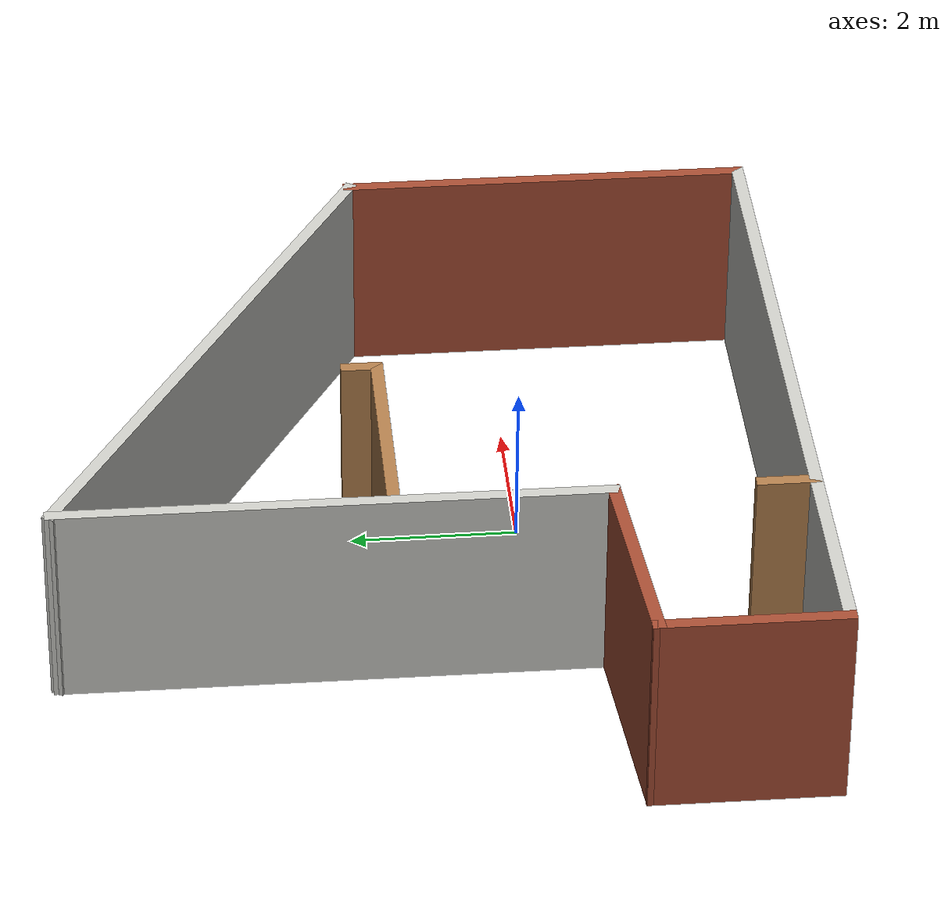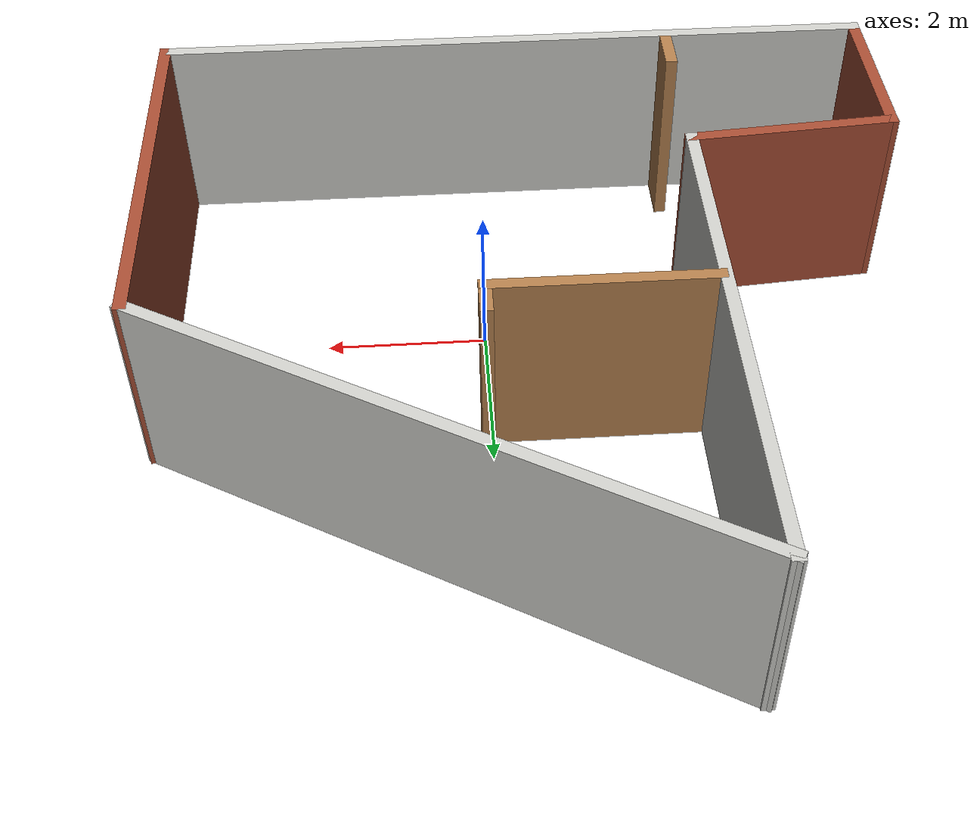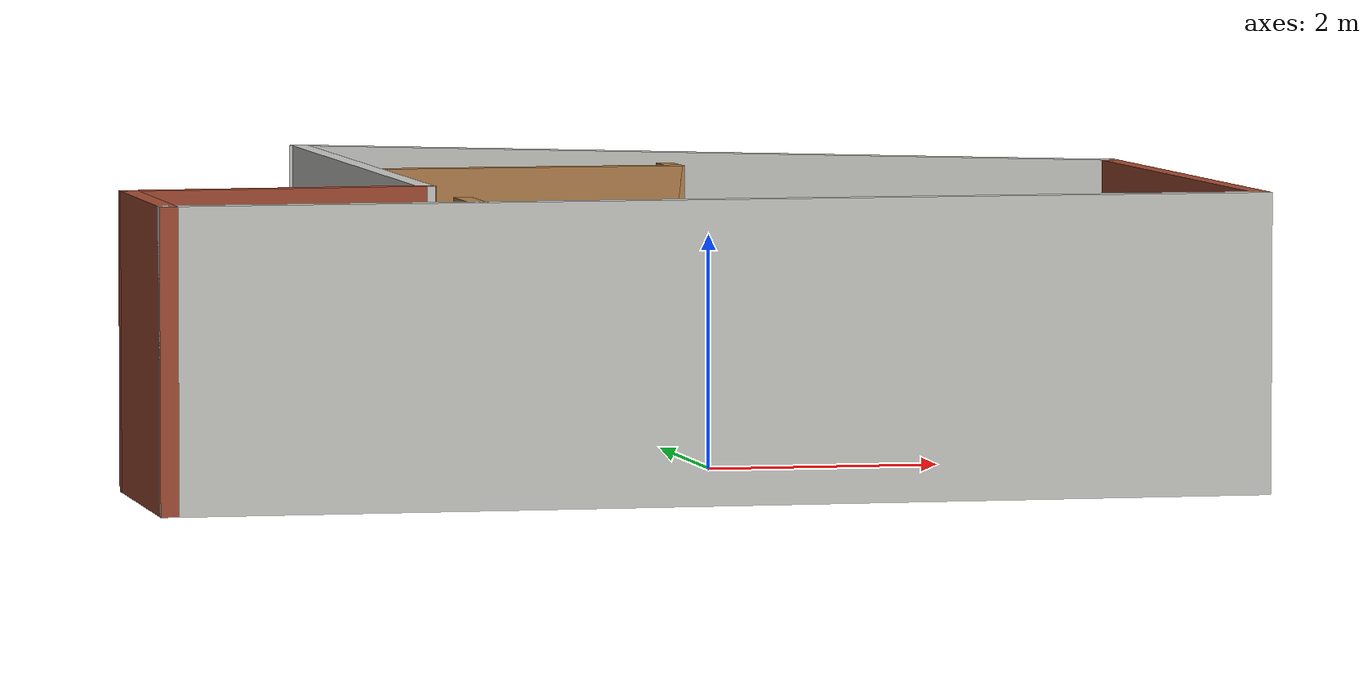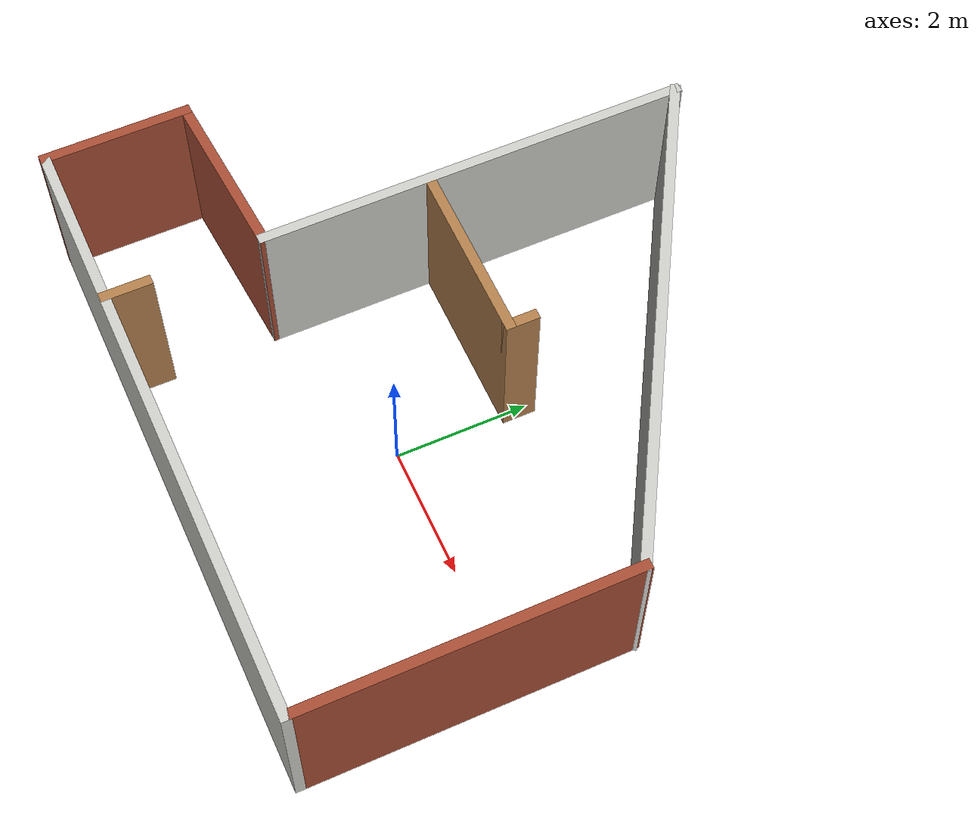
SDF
<?xml version='1.0'?>
<sdf version='1.7'>
  <model name='navigation_world'>
    <pose>-0.557332 1.21873 0 0 -0 0</pose>
    <link name='Wall_0'>
      <collision name='Wall_0_Collision'>
        <geometry>
          <box>
            <size>6.5 0.15 2.5</size>
          </box>
        </geometry>
        <pose>0 0 1.25 0 -0 0</pose>
      </collision>
      <visual name='Wall_0_Visual'>
        <pose>0 0 1.25 0 -0 0</pose>
        <geometry>
          <box>
            <size>6.5 0.15 2.5</size>
          </box>
        </geometry>
        <material>
          <script>
            <uri>file://media/materials/scripts/gazebo.material</uri>
            <name>Gazebo/CeilingTiled</name>
          </script>
          <ambient>1 1 1 1</ambient>
        </material>
        <meta>
          <layer>0</layer>
        </meta>
      </visual>
      <pose>-2.04267 1.13627 0 0 -0 1.5708</pose>
    </link>
    <link name='Wall_1'>
      <collision name='Wall_1_Collision'>
        <geometry>
          <box>
            <size>7.75 0.15 2.5</size>
          </box>
        </geometry>
        <pose>0 0 1.25 0 -0 0</pose>
      </collision>
      <visual name='Wall_1_Visual'>
        <pose>0 0 1.25 0 -0 0</pose>
        <geometry>
          <box>
            <size>7.75 0.15 2.5</size>
          </box>
        </geometry>
        <material>
          <script>
            <uri>file://media/materials/scripts/gazebo.material</uri>
            <name>Gazebo/CeilingTiled</name>
          </script>
          <ambient>1 1 1 1</ambient>
        </material>
        <meta>
          <layer>0</layer>
        </meta>
      </visual>
      <pose>1.24823 2.41127 0 0 -0 -0.523599</pose>
    </link>
    <link name='Wall_10'>
      <collision name='Wall_10_Collision'>
        <geometry>
          <box>
            <size>0.5 0.15 2.5</size>
          </box>
        </geometry>
        <pose>0 0 1.25 0 -0 0</pose>
      </collision>
      <visual name='Wall_10_Visual'>
        <pose>0 0 1.25 0 -0 0</pose>
        <geometry>
          <box>
            <size>0.5 0.15 2.5</size>
          </box>
        </geometry>
        <material>
          <script>
            <uri>file://media/materials/scripts/gazebo.material</uri>
            <name>Gazebo/Wood</name>
          </script>
          <ambient>1 1 1 1</ambient>
        </material>
        <meta>
          <layer>0</layer>
        </meta>
      </visual>
      <pose>0.613601 0.629251 0 0 -0 1.5708</pose>
    </link>
    <link name='Wall_2'>
      <collision name='Wall_2_Collision'>
        <geometry>
          <box>
            <size>5 0.15 2.5</size>
          </box>
        </geometry>
        <pose>0 0 1.25 0 -0 0</pose>
      </collision>
      <visual name='Wall_2_Visual'>
        <pose>0 0 1.25 0 -0 0</pose>
        <geometry>
          <box>
            <size>5 0.15 2.5</size>
          </box>
        </geometry>
        <material>
          <script>
            <uri>file://media/materials/scripts/gazebo.material</uri>
            <name>Gazebo/Bricks</name>
          </script>
          <ambient>1 1 1 1</ambient>
        </material>
        <meta>
          <layer>0</layer>
        </meta>
      </visual>
      <pose>4.53913 -1.91373 0 0 -0 -1.5708</pose>
    </link>
    <link name='Wall_3'>
      <collision name='Wall_3_Collision'>
        <geometry>
          <box>
            <size>9.25 0.15 2.5</size>
          </box>
        </geometry>
        <pose>0 0 1.25 0 -0 0</pose>
      </collision>
      <visual name='Wall_3_Visual'>
        <pose>0 0 1.25 0 -0 0</pose>
        <geometry>
          <box>
            <size>9.25 0.15 2.5</size>
          </box>
        </geometry>
        <material>
          <script>
            <uri>file://media/materials/scripts/gazebo.material</uri>
            <name>Gazebo/CeilingTiled</name>
          </script>
          <ambient>1 1 1 1</ambient>
        </material>
        <meta>
          <layer>0</layer>
        </meta>
      </visual>
      <pose>-0.010875 -4.33873 0 0 -0 3.14159</pose>
    </link>
    <link name='Wall_4'>
      <collision name='Wall_4_Collision'>
        <geometry>
          <box>
            <size>2.25 0.15 2.5</size>
          </box>
        </geometry>
        <pose>0 0 1.25 0 -0 0</pose>
      </collision>
      <visual name='Wall_4_Visual'>
        <pose>0 0 1.25 0 -0 0</pose>
        <geometry>
          <box>
            <size>2.25 0.15 2.5</size>
          </box>
        </geometry>
        <material>
          <script>
            <uri>file://media/materials/scripts/gazebo.material</uri>
            <name>Gazebo/Bricks</name>
          </script>
          <ambient>1 1 1 1</ambient>
        </material>
        <meta>
          <layer>0</layer>
        </meta>
      </visual>
      <pose>-4.56088 -3.28873 0 0 -0 1.5708</pose>
    </link>
    <link name='Wall_5'>
      <collision name='Wall_5_Collision'>
        <geometry>
          <box>
            <size>2.67614 0.15 2.5</size>
          </box>
        </geometry>
        <pose>0 0 1.25 0 -0 0</pose>
      </collision>
      <visual name='Wall_5_Visual'>
        <pose>0 0 1.25 0 -0 0</pose>
        <geometry>
          <box>
            <size>2.67614 0.15 2.5</size>
          </box>
        </geometry>
        <material>
          <script>
            <uri>file://media/materials/scripts/gazebo.material</uri>
            <name>Gazebo/Bricks</name>
          </script>
          <ambient>1 1 1 1</ambient>
        </material>
        <meta>
          <layer>0</layer>
        </meta>
      </visual>
      <pose>-3.30177 -2.13873 0 0 -0 0.079255</pose>
    </link>
    <link name='Wall_7'>
      <collision name='Wall_7_Collision'>
        <geometry>
          <box>
            <size>0.75 0.15 2.5</size>
          </box>
        </geometry>
        <pose>0 0 1.25 0 -0 0</pose>
      </collision>
      <visual name='Wall_7_Visual'>
        <pose>0 0 1.25 0 -0 0</pose>
        <geometry>
          <box>
            <size>0.75 0.15 2.5</size>
          </box>
        </geometry>
        <material>
          <script>
            <uri>file://media/materials/scripts/gazebo.material</uri>
            <name>Gazebo/Wood</name>
          </script>
          <ambient>1 1 1 1</ambient>
        </material>
        <meta>
          <layer>0</layer>
        </meta>
      </visual>
      <pose>-2.02663 -4.03278 0 0 -0 1.5708</pose>
    </link>
    <link name='Wall_9'>
      <collision name='Wall_9_Collision'>
        <geometry>
          <box>
            <size>2.75 0.15 2.5</size>
          </box>
        </geometry>
        <pose>0 0 1.25 0 -0 0</pose>
      </collision>
      <visual name='Wall_9_Visual'>
        <pose>0 0 1.25 0 -0 0</pose>
        <geometry>
          <box>
            <size>2.75 0.15 2.5</size>
          </box>
        </geometry>
        <material>
          <script>
            <uri>file://media/materials/scripts/gazebo.material</uri>
            <name>Gazebo/Wood</name>
          </script>
          <ambient>1 1 1 1</ambient>
        </material>
        <meta>
          <layer>0</layer>
        </meta>
      </visual>
      <pose>-0.686399 0.454251 0 0 -0 0</pose>
    </link>
    <static>1</static>
  </model>
</sdf>
